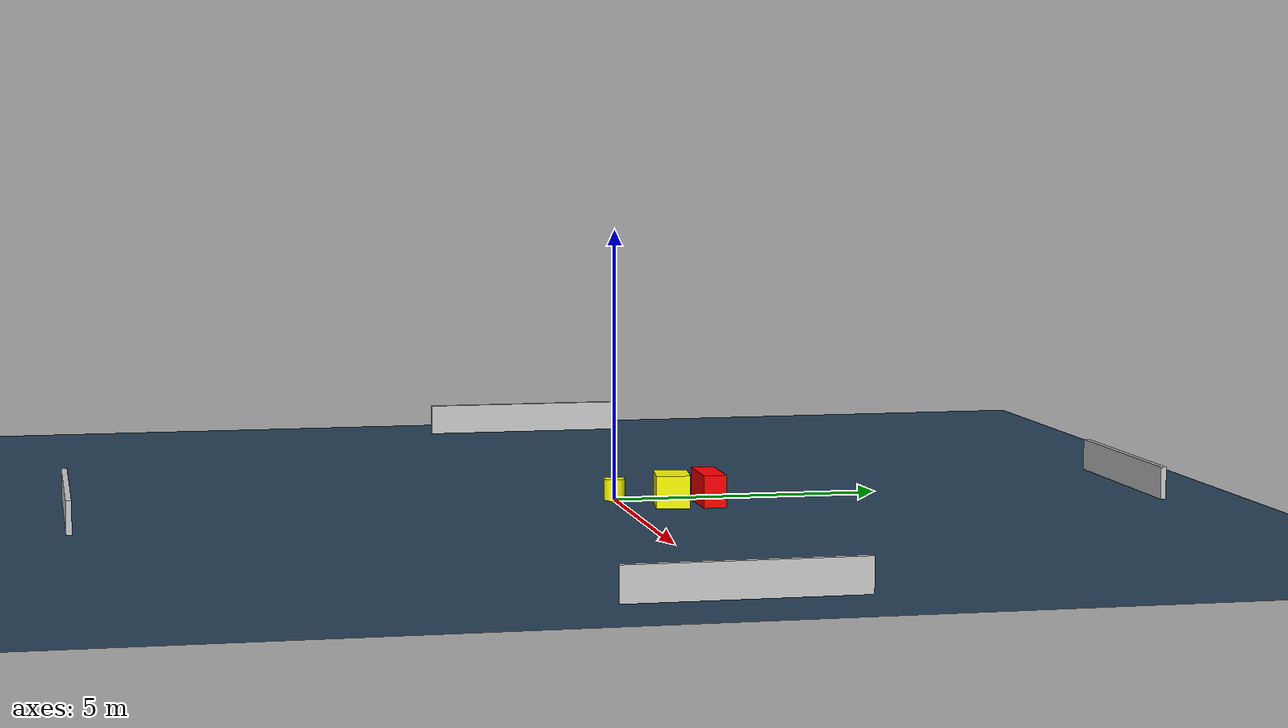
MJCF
<?xml version="1.0" ?>
<mujoco model="generated_environment">
  <option timestep="0.01" integrator="RK4" cone="elliptic"/>
  <default>
    <geom density="1"/>
  </default>
  <asset>
    <texture builtin="gradient" height="3072" name="skybox" rgb1="0.3 0.5 0.7" rgb2="0 0 0" type="skybox" width="512"/>
    <texture builtin="checker" height="300" name="groundplane" rgb1="0.2 0.3 0.4" rgb2="0.1 0.2 0.3" type="2d" width="300"/>
    <material name="groundplane" reflectance="0.2" texrepeat="5 5" texture="groundplane"/>
  </asset>
  <worldbody>
    <light dir="0 0 -1" directional="true" pos="0 0 1.5"/>
    <geom condim="3" friction="0.5 0.005 0.001" material="groundplane" name="floor" pos="0 0 0" size="0 0 0.05" type="plane"/>
    <body name="walls">
      <geom name="wall_1" condim="4" pos="-10.0 0.0 0.3" rgba="0.800000011920929 0.800000011920929 0.800000011920929 1.0" size="0.05 2.0 0.3" type="box"/>
      <geom name="wall_2" condim="4" pos="10.0 0.0 0.3" rgba="0.800000011920929 0.800000011920929 0.800000011920929 1.0" size="0.05 2.0 0.3" type="box"/>
      <geom name="wall_3" condim="4" pos="0.0 -10.0 0.3" rgba="0.800000011920929 0.800000011920929 0.800000011920929 1.0" size="2.0 0.05 0.3" type="box"/>
      <geom name="wall_4" condim="4" pos="0.0 10.0 0.3" rgba="0.800000011920929 0.800000011920929 0.800000011920929 1.0" size="2.0 0.05 0.3" type="box"/>
    </body>
    <body name="robot">
      <joint name="joint_x" type="slide" pos="0 0 0" axis="1 0 0"/>
      <joint name="joint_y" type="slide" pos="0 0 0" axis="0 1 0"/>
      <geom name="robot" type="cylinder" pos="0.0 0.0 0.2" size="0.2 0.2 0.0" mass="5.0" friction="1.0 0.005 0.0001" condim="4" rgba="1.0 1.0 0.0 1.0"/>
    </body>
    <body name="obstacle_1_movable">
      <geom name="obstacle_1_movable" condim="4" pos="0.8674951013583639 0.8890716012483645 0.3" euler="0 0 261.18731241668826" friction="0.0 0.005 0.001" rgba="1.0 1.0 0.0 1.0" size="0.3117807262185521 0.4070143727023876 0.3" type="box" mass="0.1"/>
      <joint type="free"/>
    </body>
    <body name="obstacle_2_static">
      <geom name="obstacle_2_static" condim="4" pos="0.7834011876326379 1.6070484457701717 0.3" euler="0 0 178.89586400310566" friction="0.0 0.005 0.001" rgba="1.0 0.0 0.0 1.0" size="0.5625693083079053 0.21195034164167278 0.3" type="box"/>
    </body>
  </worldbody>
  <actuator>
    <motor name="actuator_x" joint="joint_x" gear="1" ctrlrange="-1 1"/>
    <motor name="actuator_y" joint="joint_y" gear="1" ctrlrange="-1 1"/>
  </actuator>
</mujoco>
